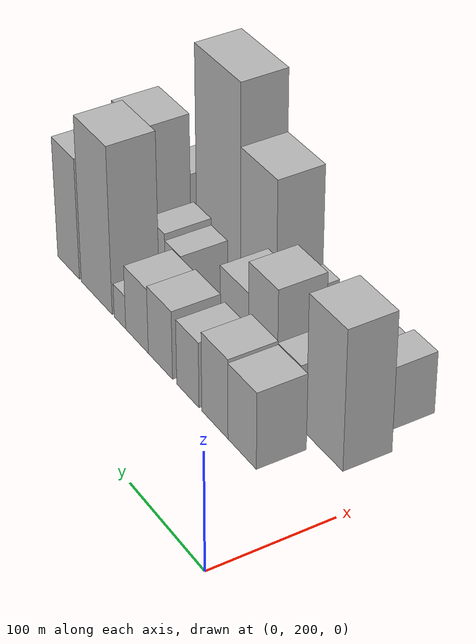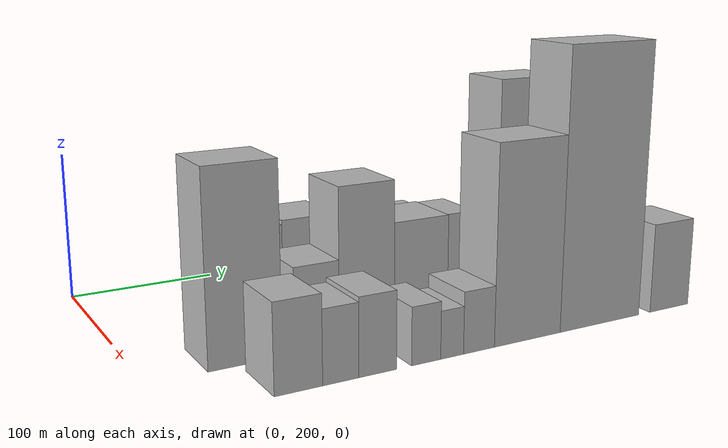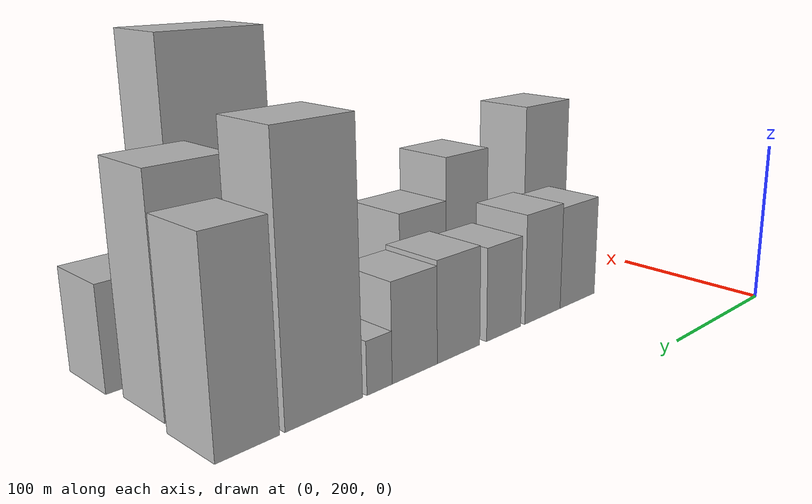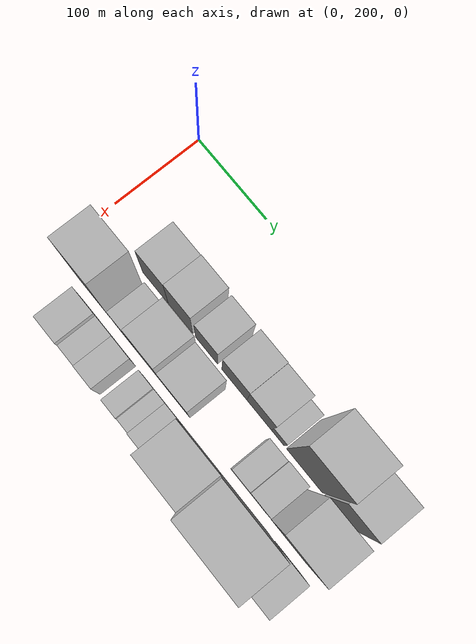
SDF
<sdf version="1.6">
 <world name="default">
  <model name="building_24">
   <static>1</static>
   <pose>100.0000 286.8793 0 0.000000 0.000000 0.000000</pose>
   <link name="link">
    <pose>0 0 33.00 0 0 0</pose>
    <collision name="collision"><geometry><box><size>40.0000 37.3974 66.0000</size></box></geometry></collision>
    <visual name="visual">
     <cast_shadows>0</cast_shadows>
     <geometry><box><size>40.0000 37.3974 66.0000</size></box></geometry>
     <material>
      <script>
       <uri>model://HANNAS_wall/materials/scripts</uri>
       <uri>model://HANNAS_wall/materials/textures</uri>
       <name>vrc/HANNAS_wall</name>
      </script>
     </material>
    </visual>
   </link>
  </model>
  <model name="building_25">
   <static>1</static>
   <pose>100.0000 323.3597 0 0.000000 0.000000 0.000000</pose>
   <link name="link">
    <pose>0 0 34.50 0 0 0</pose>
    <collision name="collision"><geometry><box><size>40.0000 35.5632 69.0000</size></box></geometry></collision>
    <visual name="visual">
     <cast_shadows>0</cast_shadows>
     <geometry><box><size>40.0000 35.5632 69.0000</size></box></geometry>
     <material>
      <script>
       <uri>model://HANNAS_wall/materials/scripts</uri>
       <uri>model://HANNAS_wall/materials/textures</uri>
       <name>vrc/HANNAS_wall</name>
      </script>
     </material>
    </visual>
   </link>
  </model>
  <model name="building_26">
   <static>1</static>
   <pose>100.0000 360.8102 0 0.000000 0.000000 0.000000</pose>
   <link name="link">
    <pose>0 0 28.50 0 0 0</pose>
    <collision name="collision"><geometry><box><size>40.0000 31.3379 57.0000</size></box></geometry></collision>
    <visual name="visual">
     <cast_shadows>0</cast_shadows>
     <geometry><box><size>40.0000 31.3379 57.0000</size></box></geometry>
     <material>
      <script>
       <uri>model://HANNAS_wall/materials/scripts</uri>
       <uri>model://HANNAS_wall/materials/textures</uri>
       <name>vrc/HANNAS_wall</name>
      </script>
     </material>
    </visual>
   </link>
  </model>
  <model name="building_27">
   <static>1</static>
   <pose>100.0000 400.1035 0 0.000000 0.000000 0.000000</pose>
   <link name="link">
    <pose>0 0 30.00 0 0 0</pose>
    <collision name="collision"><geometry><box><size>40.0000 35.2487 60.0000</size></box></geometry></collision>
    <visual name="visual">
     <cast_shadows>0</cast_shadows>
     <geometry><box><size>40.0000 35.2487 60.0000</size></box></geometry>
     <material>
      <script>
       <uri>model://HANNAS_wall/materials/scripts</uri>
       <uri>model://HANNAS_wall/materials/textures</uri>
       <name>vrc/HANNAS_wall</name>
      </script>
     </material>
    </visual>
   </link>
  </model>
  <model name="building_28">
   <static>1</static>
   <pose>100.0000 434.7161 0 0.000000 0.000000 0.000000</pose>
   <link name="link">
    <pose>0 0 28.50 0 0 0</pose>
    <collision name="collision"><geometry><box><size>40.0000 33.9765 57.0000</size></box></geometry></collision>
    <visual name="visual">
     <cast_shadows>0</cast_shadows>
     <geometry><box><size>40.0000 33.9765 57.0000</size></box></geometry>
     <material>
      <script>
       <uri>model://HANNAS_wall/materials/scripts</uri>
       <uri>model://HANNAS_wall/materials/textures</uri>
       <name>vrc/HANNAS_wall</name>
      </script>
     </material>
    </visual>
   </link>
  </model>
  <model name="building_29">
   <static>1</static>
   <pose>100.0000 460.5579 0 0.000000 0.000000 0.000000</pose>
   <link name="link">
    <pose>0 0 15.00 0 0 0</pose>
    <collision name="collision"><geometry><box><size>40.0000 17.7070 30.0000</size></box></geometry></collision>
    <visual name="visual">
     <cast_shadows>0</cast_shadows>
     <geometry><box><size>40.0000 17.7070 30.0000</size></box></geometry>
     <material>
      <script>
       <uri>model://HANNAS_wall/materials/scripts</uri>
       <uri>model://HANNAS_wall/materials/textures</uri>
       <name>vrc/HANNAS_wall</name>
      </script>
     </material>
    </visual>
   </link>
  </model>
  <model name="building_30">
   <static>1</static>
   <pose>100.0000 496.8309 0 0.000000 0.000000 0.000000</pose>
   <link name="link">
    <pose>0 0 73.50 0 0 0</pose>
    <collision name="collision"><geometry><box><size>40.0000 48.8391 147.0000</size></box></geometry></collision>
    <visual name="visual">
     <cast_shadows>0</cast_shadows>
     <geometry><box><size>40.0000 48.8391 147.0000</size></box></geometry>
     <material>
      <script>
       <uri>model://HANNAS_wall/materials/scripts</uri>
       <uri>model://HANNAS_wall/materials/textures</uri>
       <name>vrc/HANNAS_wall</name>
      </script>
     </material>
    </visual>
   </link>
  </model>
  <model name="building_31">
   <static>1</static>
   <pose>100.0000 542.0296 0 0.000000 0.000000 0.000000</pose>
   <link name="link">
    <pose>0 0 54.00 0 0 0</pose>
    <collision name="collision"><geometry><box><size>40.0000 35.5582 108.0000</size></box></geometry></collision>
    <visual name="visual">
     <cast_shadows>0</cast_shadows>
     <geometry><box><size>40.0000 35.5582 108.0000</size></box></geometry>
     <material>
      <script>
       <uri>model://HANNAS_wall/materials/scripts</uri>
       <uri>model://HANNAS_wall/materials/textures</uri>
       <name>vrc/HANNAS_wall</name>
      </script>
     </material>
    </visual>
   </link>
  </model>
  <model name="building_55">
   <static>1</static>
   <pose>149.0000 259.4241 0 0.000000 0.000000 0.000000</pose>
   <link name="link">
    <pose>0 0 60.00 0 0 0</pose>
    <collision name="collision"><geometry><box><size>40.0000 46.3230 120.0000</size></box></geometry></collision>
    <visual name="visual">
     <cast_shadows>0</cast_shadows>
     <geometry><box><size>40.0000 46.3230 120.0000</size></box></geometry>
     <material>
      <script>
       <uri>model://HANNAS_wall/materials/scripts</uri>
       <uri>model://HANNAS_wall/materials/textures</uri>
       <name>vrc/HANNAS_wall</name>
      </script>
     </material>
    </visual>
   </link>
  </model>
  <model name="building_56">
   <static>1</static>
   <pose>149.0000 305.5811 0 0.000000 0.000000 0.000000</pose>
   <link name="link">
    <pose>0 0 27.00 0 0 0</pose>
    <collision name="collision"><geometry><box><size>40.0000 29.9910 54.0000</size></box></geometry></collision>
    <visual name="visual">
     <cast_shadows>0</cast_shadows>
     <geometry><box><size>40.0000 29.9910 54.0000</size></box></geometry>
     <material>
      <script>
       <uri>model://HANNAS_wall/materials/scripts</uri>
       <uri>model://HANNAS_wall/materials/textures</uri>
       <name>vrc/HANNAS_wall</name>
      </script>
     </material>
    </visual>
   </link>
  </model>
  <model name="building_57">
   <static>1</static>
   <pose>149.0000 339.8519 0 0.000000 0.000000 0.000000</pose>
   <link name="link">
    <pose>0 0 49.50 0 0 0</pose>
    <collision name="collision"><geometry><box><size>40.0000 38.5507 99.0000</size></box></geometry></collision>
    <visual name="visual">
     <cast_shadows>0</cast_shadows>
     <geometry><box><size>40.0000 38.5507 99.0000</size></box></geometry>
     <material>
      <script>
       <uri>model://HANNAS_wall/materials/scripts</uri>
       <uri>model://HANNAS_wall/materials/textures</uri>
       <name>vrc/HANNAS_wall</name>
      </script>
     </material>
    </visual>
   </link>
  </model>
  <model name="building_58">
   <static>1</static>
   <pose>149.0000 378.7646 0 0.000000 0.000000 0.000000</pose>
   <link name="link">
    <pose>0 0 36.00 0 0 0</pose>
    <collision name="collision"><geometry><box><size>40.0000 39.2746 72.0000</size></box></geometry></collision>
    <visual name="visual">
     <cast_shadows>0</cast_shadows>
     <geometry><box><size>40.0000 39.2746 72.0000</size></box></geometry>
     <material>
      <script>
       <uri>model://HANNAS_wall/materials/scripts</uri>
       <uri>model://HANNAS_wall/materials/textures</uri>
       <name>vrc/HANNAS_wall</name>
      </script>
     </material>
    </visual>
   </link>
  </model>
  <model name="building_59">
   <static>1</static>
   <pose>149.0000 467.0458 0 0.000000 0.000000 0.000000</pose>
   <link name="link">
    <pose>0 0 22.50 0 0 0</pose>
    <collision name="collision"><geometry><box><size>40.0000 23.7626 45.0000</size></box></geometry></collision>
    <visual name="visual">
     <cast_shadows>0</cast_shadows>
     <geometry><box><size>40.0000 23.7626 45.0000</size></box></geometry>
     <material>
      <script>
       <uri>model://HANNAS_wall/materials/scripts</uri>
       <uri>model://HANNAS_wall/materials/textures</uri>
       <name>vrc/HANNAS_wall</name>
      </script>
     </material>
    </visual>
   </link>
  </model>
  <model name="building_60">
   <static>1</static>
   <pose>149.0000 491.8286 0 0.000000 0.000000 0.000000</pose>
   <link name="link">
    <pose>0 0 25.50 0 0 0</pose>
    <collision name="collision"><geometry><box><size>40.0000 25.8031 51.0000</size></box></geometry></collision>
    <visual name="visual">
     <cast_shadows>0</cast_shadows>
     <geometry><box><size>40.0000 25.8031 51.0000</size></box></geometry>
     <material>
      <script>
       <uri>model://HANNAS_wall/materials/scripts</uri>
       <uri>model://HANNAS_wall/materials/textures</uri>
       <name>vrc/HANNAS_wall</name>
      </script>
     </material>
    </visual>
   </link>
  </model>
  <model name="building_61">
   <static>1</static>
   <pose>149.0000 532.7078 0 0.000000 0.000000 0.000000</pose>
   <link name="link">
    <pose>0 0 63.00 0 0 0</pose>
    <collision name="collision"><geometry><box><size>40.0000 45.9553 126.0000</size></box></geometry></collision>
    <visual name="visual">
     <cast_shadows>0</cast_shadows>
     <geometry><box><size>40.0000 45.9553 126.0000</size></box></geometry>
     <material>
      <script>
       <uri>model://HANNAS_wall/materials/scripts</uri>
       <uri>model://HANNAS_wall/materials/textures</uri>
       <name>vrc/HANNAS_wall</name>
      </script>
     </material>
    </visual>
   </link>
  </model>
  <model name="building_85">
   <static>1</static>
   <pose>198.0000 270.3733 0 0.000000 0.000000 0.000000</pose>
   <link name="link">
    <pose>0 0 27.00 0 0 0</pose>
    <collision name="collision"><geometry><box><size>40.0000 29.2171 54.0000</size></box></geometry></collision>
    <visual name="visual">
     <cast_shadows>0</cast_shadows>
     <geometry><box><size>40.0000 29.2171 54.0000</size></box></geometry>
     <material>
      <script>
       <uri>model://HANNAS_wall/materials/scripts</uri>
       <uri>model://HANNAS_wall/materials/textures</uri>
       <name>vrc/HANNAS_wall</name>
      </script>
     </material>
    </visual>
   </link>
  </model>
  <model name="building_86">
   <static>1</static>
   <pose>198.0000 296.3328 0 0.000000 0.000000 0.000000</pose>
   <link name="link">
    <pose>0 0 22.50 0 0 0</pose>
    <collision name="collision"><geometry><box><size>40.0000 22.7019 45.0000</size></box></geometry></collision>
    <visual name="visual">
     <cast_shadows>0</cast_shadows>
     <geometry><box><size>40.0000 22.7019 45.0000</size></box></geometry>
     <material>
      <script>
       <uri>model://HANNAS_wall/materials/scripts</uri>
       <uri>model://HANNAS_wall/materials/textures</uri>
       <name>vrc/HANNAS_wall</name>
      </script>
     </material>
    </visual>
   </link>
  </model>
  <model name="building_87">
   <static>1</static>
   <pose>198.0000 319.9669 0 0.000000 0.000000 0.000000</pose>
   <link name="link">
    <pose>0 0 24.00 0 0 0</pose>
    <collision name="collision"><geometry><box><size>40.0000 24.5662 48.0000</size></box></geometry></collision>
    <visual name="visual">
     <cast_shadows>0</cast_shadows>
     <geometry><box><size>40.0000 24.5662 48.0000</size></box></geometry>
     <material>
      <script>
       <uri>model://HANNAS_wall/materials/scripts</uri>
       <uri>model://HANNAS_wall/materials/textures</uri>
       <name>vrc/HANNAS_wall</name>
      </script>
     </material>
    </visual>
   </link>
  </model>
  <model name="building_88">
   <static>1</static>
   <pose>198.0000 352.2411 0 0.000000 0.000000 0.000000</pose>
   <link name="link">
    <pose>0 0 18.00 0 0 0</pose>
    <collision name="collision"><geometry><box><size>40.0000 19.9821 36.0000</size></box></geometry></collision>
    <visual name="visual">
     <cast_shadows>0</cast_shadows>
     <geometry><box><size>40.0000 19.9821 36.0000</size></box></geometry>
     <material>
      <script>
       <uri>model://HANNAS_wall/materials/scripts</uri>
       <uri>model://HANNAS_wall/materials/textures</uri>
       <name>vrc/HANNAS_wall</name>
      </script>
     </material>
    </visual>
   </link>
  </model>
  <model name="building_89">
   <static>1</static>
   <pose>198.0000 370.2662 0 0.000000 0.000000 0.000000</pose>
   <link name="link">
    <pose>0 0 15.00 0 0 0</pose>
    <collision name="collision"><geometry><box><size>40.0000 16.0682 30.0000</size></box></geometry></collision>
    <visual name="visual">
     <cast_shadows>0</cast_shadows>
     <geometry><box><size>40.0000 16.0682 30.0000</size></box></geometry>
     <material>
      <script>
       <uri>model://HANNAS_wall/materials/scripts</uri>
       <uri>model://HANNAS_wall/materials/textures</uri>
       <name>vrc/HANNAS_wall</name>
      </script>
     </material>
    </visual>
   </link>
  </model>
  <model name="building_90">
   <static>1</static>
   <pose>198.0000 389.5272 0 0.000000 0.000000 0.000000</pose>
   <link name="link">
    <pose>0 0 19.50 0 0 0</pose>
    <collision name="collision"><geometry><box><size>40.0000 22.4536 39.0000</size></box></geometry></collision>
    <visual name="visual">
     <cast_shadows>0</cast_shadows>
     <geometry><box><size>40.0000 22.4536 39.0000</size></box></geometry>
     <material>
      <script>
       <uri>model://HANNAS_wall/materials/scripts</uri>
       <uri>model://HANNAS_wall/materials/textures</uri>
       <name>vrc/HANNAS_wall</name>
      </script>
     </material>
    </visual>
   </link>
  </model>
  <model name="building_91">
   <static>1</static>
   <pose>198.0000 425.9356 0 0.000000 0.000000 0.000000</pose>
   <link name="link">
    <pose>0 0 63.00 0 0 0</pose>
    <collision name="collision"><geometry><box><size>40.0000 50.3632 126.0000</size></box></geometry></collision>
    <visual name="visual">
     <cast_shadows>0</cast_shadows>
     <geometry><box><size>40.0000 50.3632 126.0000</size></box></geometry>
     <material>
      <script>
       <uri>model://HANNAS_wall/materials/scripts</uri>
       <uri>model://HANNAS_wall/materials/textures</uri>
       <name>vrc/HANNAS_wall</name>
      </script>
     </material>
    </visual>
   </link>
  </model>
  <model name="building_92">
   <static>1</static>
   <pose>198.0000 483.8103 0 0.000000 0.000000 0.000000</pose>
   <link name="link">
    <pose>0 0 90.00 0 0 0</pose>
    <collision name="collision"><geometry><box><size>40.0000 65.3863 180.0000</size></box></geometry></collision>
    <visual name="visual">
     <cast_shadows>0</cast_shadows>
     <geometry><box><size>40.0000 65.3863 180.0000</size></box></geometry>
     <material>
      <script>
       <uri>model://HANNAS_wall/materials/scripts</uri>
       <uri>model://HANNAS_wall/materials/textures</uri>
       <name>vrc/HANNAS_wall</name>
      </script>
     </material>
    </visual>
   </link>
  </model>
  <model name="building_93">
   <static>1</static>
   <pose>198.0000 543.5589 0 0.000000 0.000000 0.000000</pose>
   <link name="link">
    <pose>0 0 30.00 0 0 0</pose>
    <collision name="collision"><geometry><box><size>40.0000 34.1108 60.0000</size></box></geometry></collision>
    <visual name="visual">
     <cast_shadows>0</cast_shadows>
     <geometry><box><size>40.0000 34.1108 60.0000</size></box></geometry>
     <material>
      <script>
       <uri>model://HANNAS_wall/materials/scripts</uri>
       <uri>model://HANNAS_wall/materials/textures</uri>
       <name>vrc/HANNAS_wall</name>
      </script>
     </material>
    </visual>
   </link>
  </model>
 </world>
</sdf>
